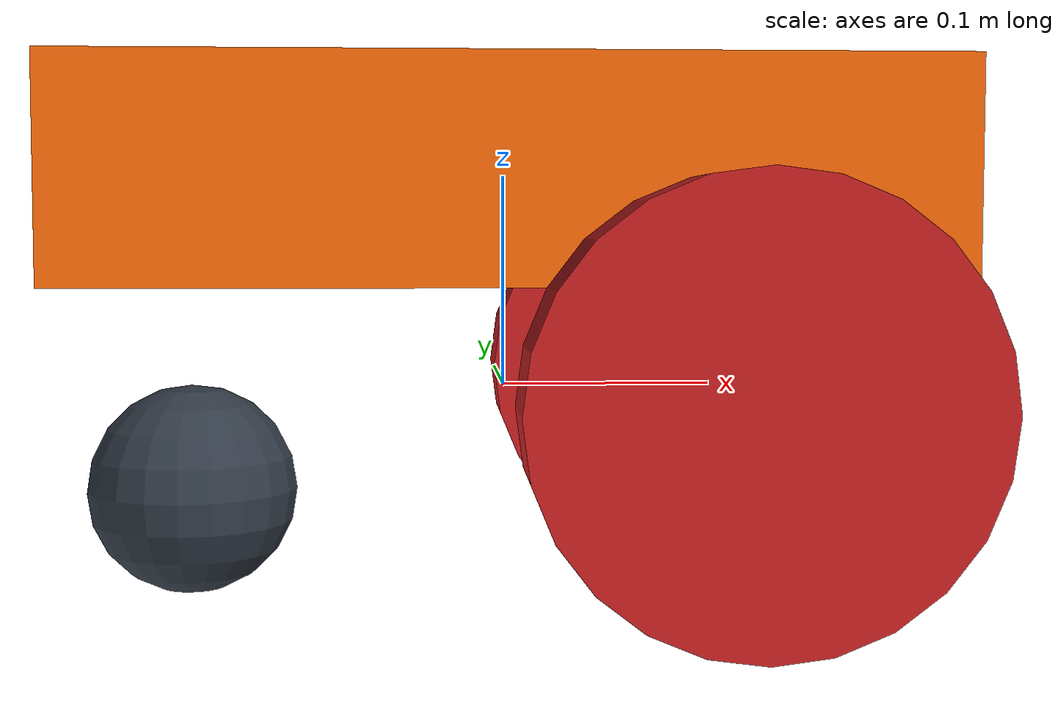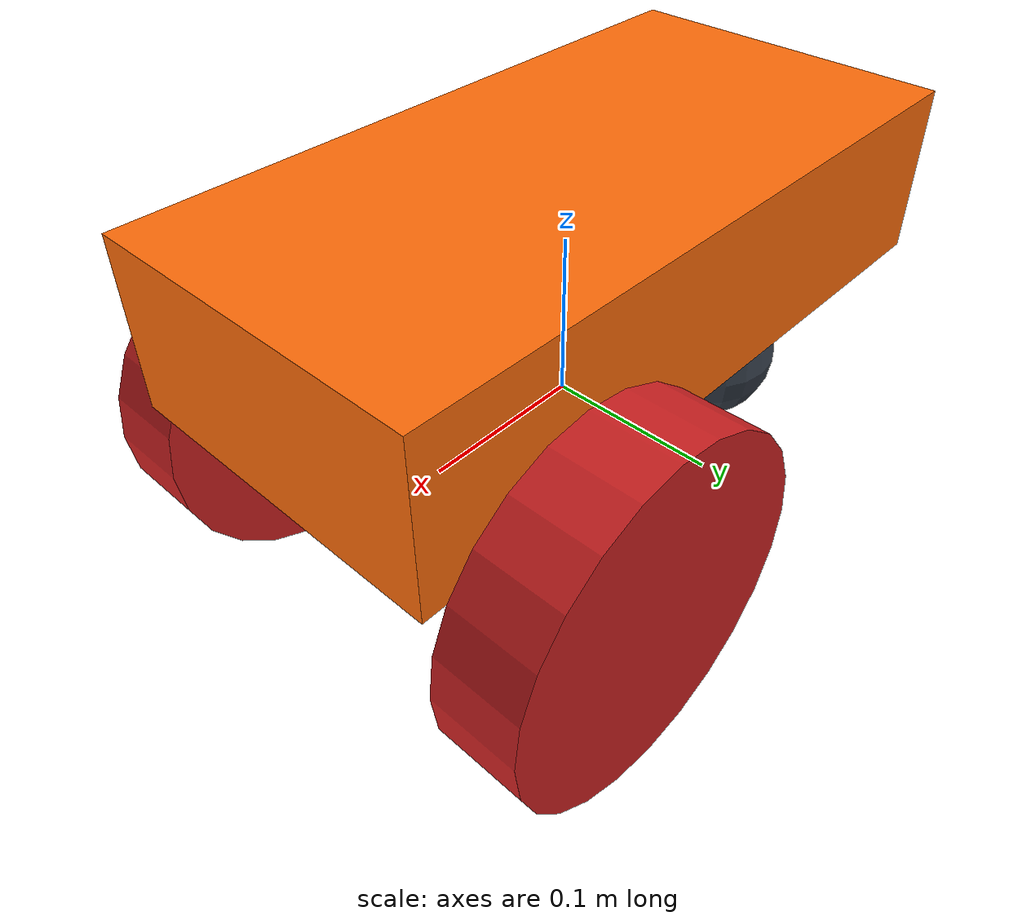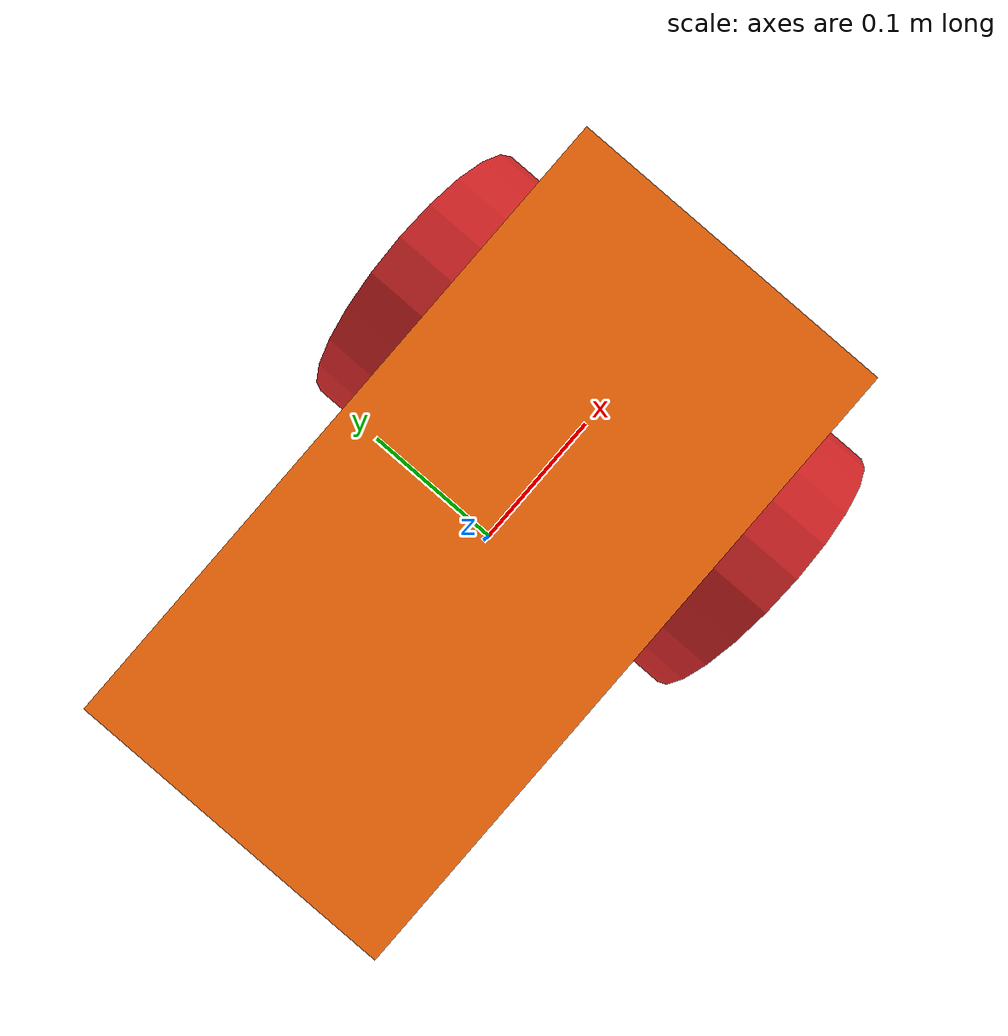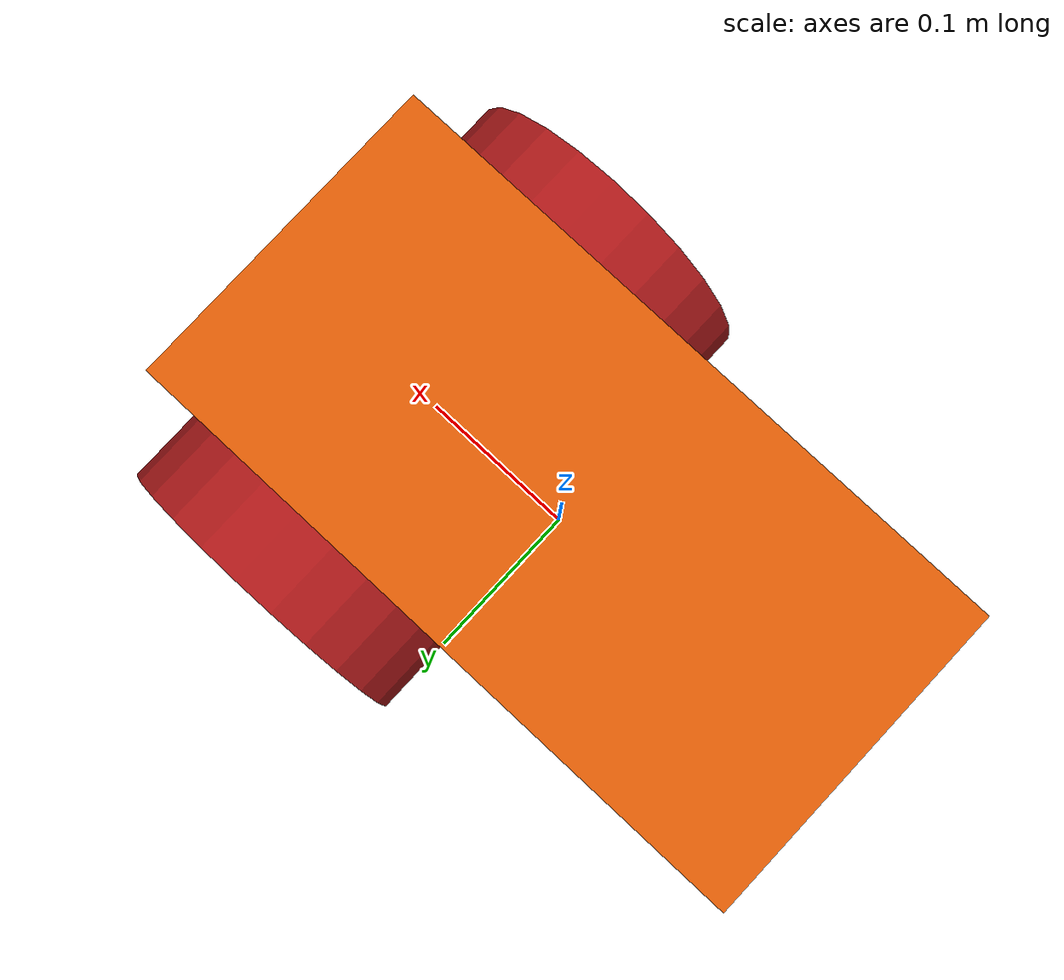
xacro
<?xml version='1.0'?>

<robot name="robot" xmlns:xacro="http://www.ros.org/wiki/xacro" >

  <xacro:property name="dlzka" value="0.4"/>
  <xacro:property name="sirka" value="0.2"/>
  <xacro:property name="vyska" value="0.1"/>
  <xacro:property name="rkolesa" value="0.1"/>
  <xacro:property name="hkolesa" value="0.05"/>

  <material name="black">
    <color rgba="0.0 0.0 0.0 1.0"/>
  </material>
  <material name="blue">
    <color rgba="0.203125 0.23828125 0.28515625 1.0"/>
  </material>
  <material name="green">
    <color rgba="0.0 0.8 0.0 1.0"/>
  </material>
  <material name="grey">
    <color rgba="0.2 0.2 0.2 1.0"/>
  </material>
  <material name="orange">
    <color rgba="1.0 0.423529411765 0.0392156862745 1.0"/>
  </material>
  <material name="brown">
    <color rgba="0.870588235294 0.811764705882 0.764705882353 1.0"/>
  </material>
  <material name="red">
    <color rgba="0.80078125 0.12890625 0.1328125 1.0"/>
  </material>
  <material name="white">
    <color rgba="1.0 1.0 1.0 1.0"/>
  </material>

  <!-- umoznenie ovladania -->

  <gazebo reference="telo">
    <material>Gazebo/Orange</material>
  </gazebo>

  <link name='telo'>
    <visual name='telo_visual'>
      <origin xyz="0 0 0.1" rpy="0 0 0"/>
      <geometry>
        <box size="${dlzka} ${sirka} ${vyska}"/>
      </geometry>
      <material name="orange"/>
    </visual>
    <collision name='telo_collision'>
      <geometry>
        <box size="${dlzka} ${sirka} ${vyska}"/>
      </geometry>
    </collision>
    <inertial>
      <mass value="10.0"/>
      <origin xyz="0.0 0 0.1" rpy="0 0 0"/>
      <inertia
              ixx="0.5" ixy="0" ixz="0"
              iyy="1.0" iyz="0"
              izz="0.1"
      />
    </inertial>
  </link>

  <link name="vsesmerove_koleso">
    <visual name='vsesmerove_visual'>
      <origin xyz="0 0 0" rpy="0 0 0"/>
      <geometry>
        <sphere radius="0.05"/>
      </geometry>
      <material name="blue"/>
    </visual>
    <collision name='vsesmerove_collision'>
      <origin xyz="-0.15 0 -0.05" rpy="0 0 0"/>
      <geometry>
        <sphere radius="0.05"/>
      </geometry>
      <surface>
        <friction>
          <ode>
            <mu>0</mu>
            <mu2>0</mu2>
            <slip1>1.0</slip1>
            <slip2>1.0</slip2>
          </ode>
        </friction>
      </surface>
    </collision>
    <!-- asi chyba inertia  -->
  </link>

  <joint name="vsesmerove_koleso_upevnenie" type="fixed">
    <origin xyz="-0.15 0 -0.05" rpy="0 0 0"/>
    <parent link="telo"/>
    <child link="vsesmerove_koleso"/>
  </joint>

  <!-- kolesa robota  -->
  <xacro:macro name="koleso" params="prefix reflect">

    <link name="${prefix}_koleso">
      <visual name="${prefix}_koleso_visual">
        <origin xyz="0 0 0" rpy="0 1.5707 1.5707"/>
        <geometry>
          <cylinder radius="${rkolesa}" length="${hkolesa}"/>
        </geometry>
        <material name="red"/>
      </visual>
      <collision name="${prefix}_koleso_collision">
        <origin xyz="0 0 0" rpy="0 1.5707 1.5707"/>
        <geometry>
          <cylinder radius="${rkolesa}" length="${hkolesa}"/>
        </geometry>
      </collision>
      <inertial>
        <origin xyz="0 0 0" rpy="0 1.5707 1.5707"/>
        <mass value="5"/>
        <cylinder_inertia m="5" r="0.1" h="0.05"/>
        <inertia
                ixx="1.0" ixy="0.0" ixz="0.0"
                iyy="1.0" iyz="0.0"
                izz="1.0"/>
      </inertial>
    </link>

    <!-- v jednom navode pre koleso bol pridany aj gazebo tag asi takto vyzeral-->

    <joint type="continuous" name="${prefix}_koleso_zaves">
      <origin xyz="0.1 ${reflect*0.125} 0" rpy="0 0 0"/>
      <child link="${prefix}_koleso"/>
      <parent link="telo"/>
      <axis xyz="0 1 0" rpy="0 0 0"/>
      <limit effort="100" velocity="100"/>
      <joint_properties damping="0.0" friction="0.0"/>
    </joint>

    <transmission name="${prefix}_koleso_trans">
      <type>transmission_interface/SimpleTransmission</type>
      <actuator name="${prefix}_koleso_motor">
        <!--v navode bolo 10 -->
        <mechanicalReduction>1</mechanicalReduction>
        <hardwareInterface>hardware_interface/VelocityJointInterface</hardwareInterface>
      </actuator>
    </transmission>

  </xacro:macro>

  <xacro:koleso prefix="lave" reflect="1"/>
  <xacro:koleso prefix="prave" reflect="-1"/>

  <gazebo>
    <plugin name="gazebo_ros_control" filename="libgazebo_ros_control.so">
      <robotNamespace>/</robotNamespace>
    </plugin>
  </gazebo>

  <link name="nas_lidar">
    <inertial>
      <mass value="0.001"/>
      <origin xyz="0 0 0" rpy="0 0 0"/>
      <inertia ixx="0.0001" ixy="0" ixz="0" iyy="0.0001" iyz="0" izz="0.0001"/>
    </inertial>
    <visual>
      <origin xyz="0 0 0" rpy="0 0 0"/>
      <geometry>
        <box size="0.05 0.05 0.02"/>
      </geometry>
      <material name="red"/>
    </visual>
    <collision>
      <origin xyz="0 0 0" rpy="0 0 0"/>
      <geometry>
        <box size="0.05 0.05 0.02"/>
      </geometry>
    </collision>
  </link>

  <joint name="nas_lidar_upevnenie" type="fixed">
    <origin xyz="0.1 0 0.1" rpy="0 0 0"/>
    <parent link="telo"/>
    <child link="nas_lidar"/>
    <axis xyz="0 1 0"/>
  </joint>

  <gazebo reference="nas_lidar">
    <sensor type="ray" name="nas_lidar_sensor">
      <pose>0 0 0 0 0 0</pose>
      <visualize>true</visualize>
      <update_rate>10</update_rate>
      <ray>
        <scan>
          <horizontal>
            <samples>720</samples>
            <resolution>1</resolution>
            <min_angle>-1.570796</min_angle>
            <max_angle>1.570796</max_angle>
          </horizontal>
        </scan>
        <range>
          <min>0.10</min>
          <max>30.0</max>
          <resolution>0.01</resolution>
        </range>
        <noise>
          <type>gaussian</type>
          <mean>0.0</mean>
          <stddev>0.01</stddev>
        </noise>
      </ray>
      <plugin name="nas_lidar_sensor" filename="libgazebo_ros_laser.so">
        <topicName>/scan</topicName>
        <frameName>nas_lidar</frameName>
      </plugin>
    </sensor>

  </gazebo>

</robot>
